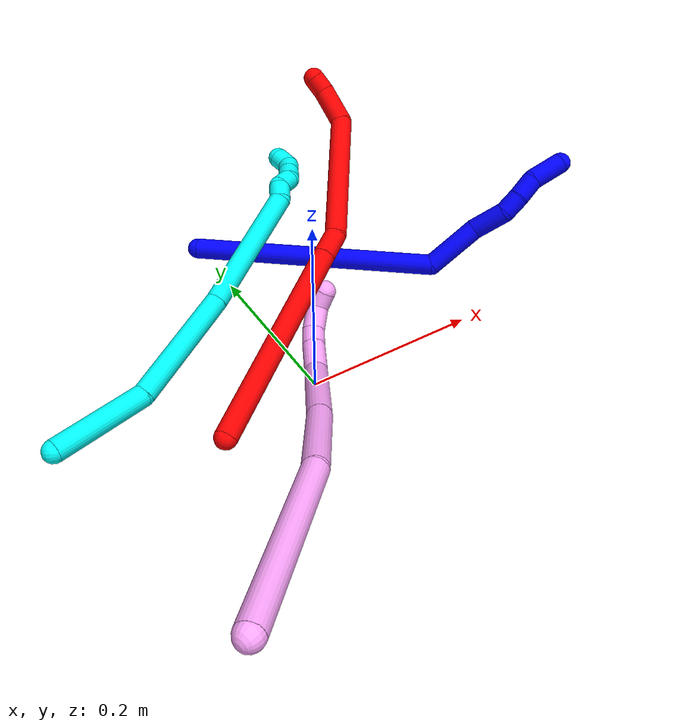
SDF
<sdf version="1.7">
 <world name="default">
  <plugin name="TubeGeneratorPlugin" filename="libtube_generator_plugin.so"/>
  <model name="photoneo_s_sensor">
   <static>1</static>
   <pose>0 0 2 1.57079 1.57079 3.14159</pose>
   <link name="link">
    <inertial><mass>0.1</mass></inertial>
    <sensor name="sensor" type="depth">
     <update_rate>30</update_rate>
     <camera>
      <horizontal_fov>1.22</horizontal_fov>
      <image><width>1920</width><height>1200</height><format>B8G8R8</format></image>
      <clip><near>0.1</near><far>4</far></clip>
      <depth_camera><output>points</output></depth_camera>
     </camera>
     <plugin name="camera_plugin" filename="libgazebo_ros_depth_camera.so">
      <baseline>0.2</baseline>
      <alwaysOn>1</alwaysOn>
      <updateRate>0.0</updateRate>
      <cameraName>camera_ir</cameraName>
      <imageTopicName>/camera/color/image_raw</imageTopicName>
      <cameraInfoTopicName>/camera/color/camera_info</cameraInfoTopicName>
      <depthImageTopicName>/camera/depth/image_raw</depthImageTopicName>
      <depthImageCameraInfoTopicName>/camera/depth/camera_info</depthImageCameraInfoTopicName>
      <pointCloudTopicName>/camera/depth/points</pointCloudTopicName>
      <frameName>fr_optical</frameName>
      <pointCloudCutoff>0.1</pointCloudCutoff>
      <pointCloudCutoffMax>2.0</pointCloudCutoffMax>
      <distortionK1>0</distortionK1>
      <distortionK2>0</distortionK2>
      <distortionK3>0</distortionK3>
      <distortionT1>0</distortionT1>
      <distortionT2>0</distortionT2>
      <CxPrime>0</CxPrime>
      <Cx>0</Cx>
      <Cy>0</Cy>
      <focalLength>0</focalLength>
      <hackBaseline>0</hackBaseline>
     </plugin>
    </sensor>
   </link>
  </model>
  <gravity>0 0 -9.8</gravity>
  <magnetic_field>6e-06 2.3e-05 -4.2e-05</magnetic_field>
  <atmosphere type="adiabatic"/>
  <physics name="default_physics" default="0" type="ode">
   <max_step_size>0.003</max_step_size>
   <real_time_factor>1</real_time_factor>
   <real_time_update_rate>1000</real_time_update_rate>
   <max_contacts>10000</max_contacts>
   <ode>
    <solver>
     <type>quick</type>
     <iters>100</iters>
     <sor>1.3</sor>
     <use_dynamic_moi_rescaling>0</use_dynamic_moi_rescaling>
    </solver>
    <constraints>
     <contact_max_correcting_vel>0</contact_max_correcting_vel>
     <contact_surface_layer>0.001</contact_surface_layer>
     <cfm>0</cfm>
     <erp>0.2</erp>
    </constraints>
   </ode>
  </physics>
  <scene><ambient>0.4 0.4 0.4 1</ambient><background>0.7 0.7 0.7 1</background><shadows>0</shadows></scene>
  <audio><device>default</device></audio>
  <spherical_coordinates>
   <surface_model>EARTH_WGS84</surface_model>
   <latitude_deg>0</latitude_deg>
   <longitude_deg>0</longitude_deg>
   <elevation>0</elevation>
   <heading_deg>0</heading_deg>
  </spherical_coordinates>
  <model name="bin">
   <static>1</static>
   <link name="bottom">
    <collision name="collision-bottom">
     <pose>0 0 -0.01 0 -0 0</pose>
     <geometry><box><size>0.8 0.6 0.02</size></box></geometry>
     <surface>
      <friction><ode><mu>100</mu><mu2>100</mu2></ode></friction>
      <contact><collide_bitmask>65535</collide_bitmask></contact>
     </surface>
    </collision>
   </link>
   <link name="west_wall">
    <collision name="collision-west_wall">
     <pose>-0.41 0 0.1 0 -0 0</pose>
     <geometry><box><size>0.02 0.6 0.2</size></box></geometry>
     <surface>
      <friction><ode><mu>100</mu><mu2>100</mu2></ode></friction>
      <contact><collide_bitmask>65535</collide_bitmask></contact>
     </surface>
    </collision>
   </link>
   <link name="east_wall">
    <collision name="collision-east_wall">
     <pose>0.41 0 0.1 0 -0 0</pose>
     <geometry><box><size>0.02 0.6 0.2</size></box></geometry>
     <surface>
      <friction><ode><mu>100</mu><mu2>100</mu2></ode></friction>
      <contact><collide_bitmask>65535</collide_bitmask></contact>
     </surface>
    </collision>
   </link>
   <link name="south_wall">
    <collision name="collision-south_wall">
     <pose>0 -0.31 0.1 0 -0 0</pose>
     <geometry><box><size>0.8 0.02 0.2</size></box></geometry>
     <surface>
      <friction><ode><mu>100</mu><mu2>100</mu2></ode></friction>
      <contact><collide_bitmask>65535</collide_bitmask></contact>
     </surface>
    </collision>
   </link>
   <link name="north_wall">
    <collision name="collision-north_wall">
     <pose>0 0.31 0.1 0 -0 0</pose>
     <geometry><box><size>0.8 0.02 0.2</size></box></geometry>
     <surface>
      <friction><ode><mu>100</mu><mu2>100</mu2></ode></friction>
      <contact><collide_bitmask>65535</collide_bitmask></contact>
     </surface>
    </collision>
   </link>
  </model>
  <model name="1">
   <static>0</static>
   <link name="1">
    <collision name="collision-cylinder-e_1_1_4">
     <pose>0.102237 -0.104151 0.024269 1.34186 0.762916 0.616474</pose>
     <geometry><cylinder><radius>0.0125</radius><length>0.295898</length></cylinder></geometry>
     <surface>
      <friction><ode><mu>1.16</mu><mu2>1.16</mu2><slip1>0</slip1><slip2>0</slip2></ode></friction>
      <contact><ode><kp>1e+06</kp><kd>1</kd><max_vel>0</max_vel><min_depth>0.001</min_depth></ode></contact>
     </surface>
    </collision>
    <visual name="visual-cylinder-e_1_1_4">
     <pose>0.102237 -0.104151 0.024269 1.34186 0.762916 0.616474</pose>
     <geometry><cylinder><radius>0.0125</radius><length>0.295898</length></cylinder></geometry>
     <material><ambient>0 0 1 1</ambient></material>
    </visual>
    <collision name="collision-cylinder-e_2_4_5">
     <pose>0.2166 -0.235383 0.031329 2.13687 0.361303 0.641926</pose>
     <geometry><cylinder><radius>0.0125</radius><length>0.068604</length></cylinder></geometry>
     <surface>
      <friction><ode><mu>1.16</mu><mu2>1.16</mu2><slip1>0</slip1><slip2>0</slip2></ode></friction>
      <contact><ode><kp>1e+06</kp><kd>1</kd><max_vel>0</max_vel><min_depth>0.001</min_depth></ode></contact>
     </surface>
    </collision>
    <visual name="visual-cylinder-e_2_4_5">
     <pose>0.2166 -0.235383 0.031329 2.13687 0.361303 0.641926</pose>
     <geometry><cylinder><radius>0.0125</radius><length>0.068604</length></cylinder></geometry>
     <material><ambient>0 0 1 1</ambient></material>
    </visual>
    <collision name="collision-cylinder-e_3_5_6">
     <pose>0.242642 -0.275287 0.004198 2.22938 0.709334 1.29317</pose>
     <geometry><cylinder><radius>0.0125</radius><length>0.042731</length></cylinder></geometry>
     <surface>
      <friction><ode><mu>1.16</mu><mu2>1.16</mu2><slip1>0</slip1><slip2>0</slip2></ode></friction>
      <contact><ode><kp>1e+06</kp><kd>1</kd><max_vel>0</max_vel><min_depth>0.001</min_depth></ode></contact>
     </surface>
    </collision>
    <visual name="visual-cylinder-e_3_5_6">
     <pose>0.242642 -0.275287 0.004198 2.22938 0.709334 1.29317</pose>
     <geometry><cylinder><radius>0.0125</radius><length>0.042731</length></cylinder></geometry>
     <material><ambient>0 0 1 1</ambient></material>
    </visual>
    <collision name="collision-cylinder-e_4_6_7">
     <pose>0.260132 -0.297325 -0.013213 2.25314 0.292301 0.599888</pose>
     <geometry><cylinder><radius>0.0125</radius><length>0.024804</length></cylinder></geometry>
     <surface>
      <friction><ode><mu>1.16</mu><mu2>1.16</mu2><slip1>0</slip1><slip2>0</slip2></ode></friction>
      <contact><ode><kp>1e+06</kp><kd>1</kd><max_vel>0</max_vel><min_depth>0.001</min_depth></ode></contact>
     </surface>
    </collision>
    <visual name="visual-cylinder-e_4_6_7">
     <pose>0.260132 -0.297325 -0.013213 2.25314 0.292301 0.599888</pose>
     <geometry><cylinder><radius>0.0125</radius><length>0.024804</length></cylinder></geometry>
     <material><ambient>0 0 1 1</ambient></material>
    </visual>
    <collision name="collision-cylinder-e_5_7_8">
     <pose>0.265461 -0.31762 -0.028572 2.18852 0.128508 0.248006</pose>
     <geometry><cylinder><radius>0.0125</radius><length>0.027403</length></cylinder></geometry>
     <surface>
      <friction><ode><mu>1.16</mu><mu2>1.16</mu2><slip1>0</slip1><slip2>0</slip2></ode></friction>
      <contact><ode><kp>1e+06</kp><kd>1</kd><max_vel>0</max_vel><min_depth>0.001</min_depth></ode></contact>
     </surface>
    </collision>
    <visual name="visual-cylinder-e_5_7_8">
     <pose>0.265461 -0.31762 -0.028572 2.18852 0.128508 0.248006</pose>
     <geometry><cylinder><radius>0.0125</radius><length>0.027403</length></cylinder></geometry>
     <material><ambient>0 0 1 1</ambient></material>
    </visual>
    <collision name="collision-cylinder-e_6_8_2">
     <pose>0.273241 -0.347135 -0.042362 1.88143 0.301589 0.410853</pose>
     <geometry><cylinder><radius>0.0125</radius><length>0.04056</length></cylinder></geometry>
     <surface>
      <friction><ode><mu>1.16</mu><mu2>1.16</mu2><slip1>0</slip1><slip2>0</slip2></ode></friction>
      <contact><ode><kp>1e+06</kp><kd>1</kd><max_vel>0</max_vel><min_depth>0.001</min_depth></ode></contact>
     </surface>
    </collision>
    <visual name="visual-cylinder-e_6_8_2">
     <pose>0.273241 -0.347135 -0.042362 1.88143 0.301589 0.410853</pose>
     <geometry><cylinder><radius>0.0125</radius><length>0.04056</length></cylinder></geometry>
     <material><ambient>0 0 1 1</ambient></material>
    </visual>
    <collision name="collision-sphere-2">
     <pose>0.279265 -0.365573 -0.048281 0 -0 0</pose>
     <geometry><sphere><radius>0.0125</radius></sphere></geometry>
     <surface>
      <friction><ode><mu>1.16</mu><mu2>1.16</mu2><slip1>0</slip1><slip2>0</slip2></ode></friction>
      <contact><ode><kp>1e+06</kp><kd>1</kd><max_vel>0</max_vel><min_depth>0.001</min_depth></ode></contact>
     </surface>
    </collision>
    <visual name="visual-sphere-2">
     <pose>0.279265 -0.365573 -0.048281 0 -0 0</pose>
     <geometry><sphere><radius>0.0125</radius></sphere></geometry>
     <material><ambient>0 0 1 1</ambient></material>
    </visual>
    <collision name="collision-sphere-4">
     <pose>0.204475 -0.208301 0.048538 0 -0 0</pose>
     <geometry><sphere><radius>0.0125</radius></sphere></geometry>
     <surface>
      <friction><ode><mu>1.16</mu><mu2>1.16</mu2><slip1>0</slip1><slip2>0</slip2></ode></friction>
      <contact><ode><kp>1e+06</kp><kd>1</kd><max_vel>0</max_vel><min_depth>0.001</min_depth></ode></contact>
     </surface>
    </collision>
    <visual name="visual-sphere-4">
     <pose>0.204475 -0.208301 0.048538 0 -0 0</pose>
     <geometry><sphere><radius>0.0125</radius></sphere></geometry>
     <material><ambient>0 0 1 1</ambient></material>
    </visual>
    <collision name="collision-sphere-1">
     <geometry><sphere><radius>0.0125</radius></sphere></geometry>
     <surface>
      <friction><ode><mu>1.16</mu><mu2>1.16</mu2><slip1>0</slip1><slip2>0</slip2></ode></friction>
      <contact><ode><kp>1e+06</kp><kd>1</kd><max_vel>0</max_vel><min_depth>0.001</min_depth></ode></contact>
     </surface>
    </collision>
    <visual name="visual-sphere-1">
     <geometry><sphere><radius>0.0125</radius></sphere></geometry>
     <material><ambient>0 0 1 1</ambient></material>
    </visual>
    <collision name="collision-sphere-8">
     <pose>0.267217 -0.328697 -0.036443 0 -0 0</pose>
     <geometry><sphere><radius>0.0125</radius></sphere></geometry>
     <surface>
      <friction><ode><mu>1.16</mu><mu2>1.16</mu2><slip1>0</slip1><slip2>0</slip2></ode></friction>
      <contact><ode><kp>1e+06</kp><kd>1</kd><max_vel>0</max_vel><min_depth>0.001</min_depth></ode></contact>
     </surface>
    </collision>
    <visual name="visual-sphere-8">
     <pose>0.267217 -0.328697 -0.036443 0 -0 0</pose>
     <geometry><sphere><radius>0.0125</radius></sphere></geometry>
     <material><ambient>0 0 1 1</ambient></material>
    </visual>
    <collision name="collision-sphere-5">
     <pose>0.228726 -0.262465 0.01412 0 -0 0</pose>
     <geometry><sphere><radius>0.0125</radius></sphere></geometry>
     <surface>
      <friction><ode><mu>1.16</mu><mu2>1.16</mu2><slip1>0</slip1><slip2>0</slip2></ode></friction>
      <contact><ode><kp>1e+06</kp><kd>1</kd><max_vel>0</max_vel><min_depth>0.001</min_depth></ode></contact>
     </surface>
    </collision>
    <visual name="visual-sphere-5">
     <pose>0.228726 -0.262465 0.01412 0 -0 0</pose>
     <geometry><sphere><radius>0.0125</radius></sphere></geometry>
     <material><ambient>0 0 1 1</ambient></material>
    </visual>
    <collision name="collision-sphere-6">
     <pose>0.256558 -0.288109 -0.005724 0 -0 0</pose>
     <geometry><sphere><radius>0.0125</radius></sphere></geometry>
     <surface>
      <friction><ode><mu>1.16</mu><mu2>1.16</mu2><slip1>0</slip1><slip2>0</slip2></ode></friction>
      <contact><ode><kp>1e+06</kp><kd>1</kd><max_vel>0</max_vel><min_depth>0.001</min_depth></ode></contact>
     </surface>
    </collision>
    <visual name="visual-sphere-6">
     <pose>0.256558 -0.288109 -0.005724 0 -0 0</pose>
     <geometry><sphere><radius>0.0125</radius></sphere></geometry>
     <material><ambient>0 0 1 1</ambient></material>
    </visual>
    <collision name="collision-sphere-7">
     <pose>0.263705 -0.306542 -0.020702 0 -0 0</pose>
     <geometry><sphere><radius>0.0125</radius></sphere></geometry>
     <surface>
      <friction><ode><mu>1.16</mu><mu2>1.16</mu2><slip1>0</slip1><slip2>0</slip2></ode></friction>
      <contact><ode><kp>1e+06</kp><kd>1</kd><max_vel>0</max_vel><min_depth>0.001</min_depth></ode></contact>
     </surface>
    </collision>
    <visual name="visual-sphere-7">
     <pose>0.263705 -0.306542 -0.020702 0 -0 0</pose>
     <geometry><sphere><radius>0.0125</radius></sphere></geometry>
     <material><ambient>0 0 1 1</ambient></material>
    </visual>
    <inertial>
     <pose>0.160579 -0.177776 0.013362 0 -0 0</pose>
     <mass>0.5</mass>
     <inertia>
      <ixx>0.002271</ixx>
      <ixy>0</ixy>
      <ixz>0</ixz>
      <iyy>0.002144</iyy>
      <iyz>0</iyz>
      <izz>4.4e-05</izz>
     </inertia>
    </inertial>
   </link>
   <pose>-0.006692 0.277471 0.012507 3.12392 -0.245218 -1.44964</pose>
  </model>
  <model name="2">
   <static>0</static>
   <link name="2">
    <collision name="collision-cylinder-e_1_1_4">
     <pose>0.013036 0.110824 0.041798 -1.21013 0.109621 -0.075854</pose>
     <geometry><cylinder><radius>0.0125</radius><length>0.238318</length></cylinder></geometry>
     <surface>
      <friction><ode><mu>1.16</mu><mu2>1.16</mu2><slip1>0</slip1><slip2>0</slip2></ode></friction>
      <contact><ode><kp>1e+06</kp><kd>1</kd><max_vel>0</max_vel><min_depth>0.001</min_depth></ode></contact>
     </surface>
    </collision>
    <visual name="visual-cylinder-e_1_1_4">
     <pose>0.013036 0.110824 0.041798 -1.21013 0.109621 -0.075854</pose>
     <geometry><cylinder><radius>0.0125</radius><length>0.238318</length></cylinder></geometry>
     <material><ambient>1 0 0 1</ambient></material>
    </visual>
    <collision name="collision-cylinder-e_2_4_5">
     <pose>0.027561 0.236885 0.08962 -1.19432 0.090572 -0.06161</pose>
     <geometry><cylinder><radius>0.0125</radius><length>0.032905</length></cylinder></geometry>
     <surface>
      <friction><ode><mu>1.16</mu><mu2>1.16</mu2><slip1>0</slip1><slip2>0</slip2></ode></friction>
      <contact><ode><kp>1e+06</kp><kd>1</kd><max_vel>0</max_vel><min_depth>0.001</min_depth></ode></contact>
     </surface>
    </collision>
    <visual name="visual-cylinder-e_2_4_5">
     <pose>0.027561 0.236885 0.08962 -1.19432 0.090572 -0.06161</pose>
     <geometry><cylinder><radius>0.0125</radius><length>0.032905</length></cylinder></geometry>
     <material><ambient>1 0 0 1</ambient></material>
    </visual>
    <collision name="collision-cylinder-e_3_5_6">
     <pose>0.063718 0.314786 0.13372 -1.02479 0.441671 -0.251231</pose>
     <geometry><cylinder><radius>0.0125</radius><length>0.162215</length></cylinder></geometry>
     <surface>
      <friction><ode><mu>1.16</mu><mu2>1.16</mu2><slip1>0</slip1><slip2>0</slip2></ode></friction>
      <contact><ode><kp>1e+06</kp><kd>1</kd><max_vel>0</max_vel><min_depth>0.001</min_depth></ode></contact>
     </surface>
    </collision>
    <visual name="visual-cylinder-e_3_5_6">
     <pose>0.063718 0.314786 0.13372 -1.02479 0.441671 -0.251231</pose>
     <geometry><cylinder><radius>0.0125</radius><length>0.162215</length></cylinder></geometry>
     <material><ambient>1 0 0 1</ambient></material>
    </visual>
    <collision name="collision-cylinder-e_4_6_7">
     <pose>0.117113 0.38577 0.181967 -0.685717 0.958874 -0.366985</pose>
     <geometry><cylinder><radius>0.0125</radius><length>0.045753</length></cylinder></geometry>
     <surface>
      <friction><ode><mu>1.16</mu><mu2>1.16</mu2><slip1>0</slip1><slip2>0</slip2></ode></friction>
      <contact><ode><kp>1e+06</kp><kd>1</kd><max_vel>0</max_vel><min_depth>0.001</min_depth></ode></contact>
     </surface>
    </collision>
    <visual name="visual-cylinder-e_4_6_7">
     <pose>0.117113 0.38577 0.181967 -0.685717 0.958874 -0.366985</pose>
     <geometry><cylinder><radius>0.0125</radius><length>0.045753</length></cylinder></geometry>
     <material><ambient>1 0 0 1</ambient></material>
    </visual>
    <collision name="collision-cylinder-e_5_7_2">
     <pose>0.145992 0.395544 0.19388 -0.694987 1.35099 -0.564883</pose>
     <geometry><cylinder><radius>0.0125</radius><length>0.020809</length></cylinder></geometry>
     <surface>
      <friction><ode><mu>1.16</mu><mu2>1.16</mu2><slip1>0</slip1><slip2>0</slip2></ode></friction>
      <contact><ode><kp>1e+06</kp><kd>1</kd><max_vel>0</max_vel><min_depth>0.001</min_depth></ode></contact>
     </surface>
    </collision>
    <visual name="visual-cylinder-e_5_7_2">
     <pose>0.145992 0.395544 0.19388 -0.694987 1.35099 -0.564883</pose>
     <geometry><cylinder><radius>0.0125</radius><length>0.020809</length></cylinder></geometry>
     <material><ambient>1 0 0 1</ambient></material>
    </visual>
    <collision name="collision-sphere-2">
     <pose>0.156146 0.396997 0.195622 0 -0 0</pose>
     <geometry><sphere><radius>0.0125</radius></sphere></geometry>
     <surface>
      <friction><ode><mu>1.16</mu><mu2>1.16</mu2><slip1>0</slip1><slip2>0</slip2></ode></friction>
      <contact><ode><kp>1e+06</kp><kd>1</kd><max_vel>0</max_vel><min_depth>0.001</min_depth></ode></contact>
     </surface>
    </collision>
    <visual name="visual-sphere-2">
     <pose>0.156146 0.396997 0.195622 0 -0 0</pose>
     <geometry><sphere><radius>0.0125</radius></sphere></geometry>
     <material><ambient>1 0 0 1</ambient></material>
    </visual>
    <collision name="collision-sphere-7">
     <pose>0.135838 0.394092 0.192137 0 -0 0</pose>
     <geometry><sphere><radius>0.0125</radius></sphere></geometry>
     <surface>
      <friction><ode><mu>1.16</mu><mu2>1.16</mu2><slip1>0</slip1><slip2>0</slip2></ode></friction>
      <contact><ode><kp>1e+06</kp><kd>1</kd><max_vel>0</max_vel><min_depth>0.001</min_depth></ode></contact>
     </surface>
    </collision>
    <visual name="visual-sphere-7">
     <pose>0.135838 0.394092 0.192137 0 -0 0</pose>
     <geometry><sphere><radius>0.0125</radius></sphere></geometry>
     <material><ambient>1 0 0 1</ambient></material>
    </visual>
    <collision name="collision-sphere-6">
     <pose>0.098388 0.377449 0.171796 0 -0 0</pose>
     <geometry><sphere><radius>0.0125</radius></sphere></geometry>
     <surface>
      <friction><ode><mu>1.16</mu><mu2>1.16</mu2><slip1>0</slip1><slip2>0</slip2></ode></friction>
      <contact><ode><kp>1e+06</kp><kd>1</kd><max_vel>0</max_vel><min_depth>0.001</min_depth></ode></contact>
     </surface>
    </collision>
    <visual name="visual-sphere-6">
     <pose>0.098388 0.377449 0.171796 0 -0 0</pose>
     <geometry><sphere><radius>0.0125</radius></sphere></geometry>
     <material><ambient>1 0 0 1</ambient></material>
    </visual>
    <collision name="collision-sphere-5">
     <pose>0.029049 0.252123 0.095644 0 -0 0</pose>
     <geometry><sphere><radius>0.0125</radius></sphere></geometry>
     <surface>
      <friction><ode><mu>1.16</mu><mu2>1.16</mu2><slip1>0</slip1><slip2>0</slip2></ode></friction>
      <contact><ode><kp>1e+06</kp><kd>1</kd><max_vel>0</max_vel><min_depth>0.001</min_depth></ode></contact>
     </surface>
    </collision>
    <visual name="visual-sphere-5">
     <pose>0.029049 0.252123 0.095644 0 -0 0</pose>
     <geometry><sphere><radius>0.0125</radius></sphere></geometry>
     <material><ambient>1 0 0 1</ambient></material>
    </visual>
    <collision name="collision-sphere-1">
     <geometry><sphere><radius>0.0125</radius></sphere></geometry>
     <surface>
      <friction><ode><mu>1.16</mu><mu2>1.16</mu2><slip1>0</slip1><slip2>0</slip2></ode></friction>
      <contact><ode><kp>1e+06</kp><kd>1</kd><max_vel>0</max_vel><min_depth>0.001</min_depth></ode></contact>
     </surface>
    </collision>
    <visual name="visual-sphere-1">
     <geometry><sphere><radius>0.0125</radius></sphere></geometry>
     <material><ambient>1 0 0 1</ambient></material>
    </visual>
    <collision name="collision-sphere-4">
     <pose>0.026072 0.221647 0.083596 0 -0 0</pose>
     <geometry><sphere><radius>0.0125</radius></sphere></geometry>
     <surface>
      <friction><ode><mu>1.16</mu><mu2>1.16</mu2><slip1>0</slip1><slip2>0</slip2></ode></friction>
      <contact><ode><kp>1e+06</kp><kd>1</kd><max_vel>0</max_vel><min_depth>0.001</min_depth></ode></contact>
     </surface>
    </collision>
    <visual name="visual-sphere-4">
     <pose>0.026072 0.221647 0.083596 0 -0 0</pose>
     <geometry><sphere><radius>0.0125</radius></sphere></geometry>
     <material><ambient>1 0 0 1</ambient></material>
    </visual>
    <inertial>
     <pose>0.045492 0.2223 0.093923 0 -0 0</pose>
     <mass>0.5</mass>
     <inertia>
      <ixx>0.001297</ixx>
      <ixy>0</ixy>
      <ixz>0</ixz>
      <iyy>0.000497</iyy>
      <iyz>0</iyz>
      <izz>-0.001619</izz>
     </inertia>
    </inertial>
   </link>
   <pose>-0.118911 -0.027608 0.011497 2.45084 -0.843451 2.32901</pose>
  </model>
  <model name="3">
   <static>0</static>
   <link name="3">
    <collision name="collision-cylinder-e_1_1_4">
     <pose>0.03265 0.034547 -0.023155 -2.16126 0.665566 -1.14958</pose>
     <geometry><cylinder><radius>0.0125</radius><length>0.105749</length></cylinder></geometry>
     <surface>
      <friction><ode><mu>1.16</mu><mu2>1.16</mu2><slip1>0</slip1><slip2>0</slip2></ode></friction>
      <contact><ode><kp>1e+06</kp><kd>1</kd><max_vel>0</max_vel><min_depth>0.001</min_depth></ode></contact>
     </surface>
    </collision>
    <visual name="visual-cylinder-e_1_1_4">
     <pose>0.03265 0.034547 -0.023155 -2.16126 0.665566 -1.14958</pose>
     <geometry><cylinder><radius>0.0125</radius><length>0.105749</length></cylinder></geometry>
     <material><ambient>0.003922 1 0.996078 1</ambient></material>
    </visual>
    <collision name="collision-cylinder-e_2_4_5">
     <pose>0.123706 0.105608 -0.061432 -1.96345 0.975904 -1.34252</pose>
     <geometry><cylinder><radius>0.0125</radius><length>0.141041</length></cylinder></geometry>
     <surface>
      <friction><ode><mu>1.16</mu><mu2>1.16</mu2><slip1>0</slip1><slip2>0</slip2></ode></friction>
      <contact><ode><kp>1e+06</kp><kd>1</kd><max_vel>0</max_vel><min_depth>0.001</min_depth></ode></contact>
     </surface>
    </collision>
    <visual name="visual-cylinder-e_2_4_5">
     <pose>0.123706 0.105608 -0.061432 -1.96345 0.975904 -1.34252</pose>
     <geometry><cylinder><radius>0.0125</radius><length>0.141041</length></cylinder></geometry>
     <material><ambient>0.003922 1 0.996078 1</ambient></material>
    </visual>
    <collision name="collision-cylinder-e_3_5_6">
     <pose>0.250651 0.167459 -0.096447 -2.23638 1.13144 -1.83446</pose>
     <geometry><cylinder><radius>0.0125</radius><length>0.151463</length></cylinder></geometry>
     <surface>
      <friction><ode><mu>1.16</mu><mu2>1.16</mu2><slip1>0</slip1><slip2>0</slip2></ode></friction>
      <contact><ode><kp>1e+06</kp><kd>1</kd><max_vel>0</max_vel><min_depth>0.001</min_depth></ode></contact>
     </surface>
    </collision>
    <visual name="visual-cylinder-e_3_5_6">
     <pose>0.250651 0.167459 -0.096447 -2.23638 1.13144 -1.83446</pose>
     <geometry><cylinder><radius>0.0125</radius><length>0.151463</length></cylinder></geometry>
     <material><ambient>0.003922 1 0.996078 1</ambient></material>
    </visual>
    <collision name="collision-cylinder-e_4_6_7">
     <pose>0.328542 0.195243 -0.113773 -0.761848 1.20842 -0.539465</pose>
     <geometry><cylinder><radius>0.0125</radius><length>0.020004</length></cylinder></geometry>
     <surface>
      <friction><ode><mu>1.16</mu><mu2>1.16</mu2><slip1>0</slip1><slip2>0</slip2></ode></friction>
      <contact><ode><kp>1e+06</kp><kd>1</kd><max_vel>0</max_vel><min_depth>0.001</min_depth></ode></contact>
     </surface>
    </collision>
    <visual name="visual-cylinder-e_4_6_7">
     <pose>0.328542 0.195243 -0.113773 -0.761848 1.20842 -0.539465</pose>
     <geometry><cylinder><radius>0.0125</radius><length>0.020004</length></cylinder></geometry>
     <material><ambient>0.003922 1 0.996078 1</ambient></material>
    </visual>
    <collision name="collision-cylinder-e_5_7_8">
     <pose>0.344866 0.204969 -0.113464 -1.87145 0.740995 -0.970201</pose>
     <geometry><cylinder><radius>0.0125</radius><length>0.020656</length></cylinder></geometry>
     <surface>
      <friction><ode><mu>1.16</mu><mu2>1.16</mu2><slip1>0</slip1><slip2>0</slip2></ode></friction>
      <contact><ode><kp>1e+06</kp><kd>1</kd><max_vel>0</max_vel><min_depth>0.001</min_depth></ode></contact>
     </surface>
    </collision>
    <visual name="visual-cylinder-e_5_7_8">
     <pose>0.344866 0.204969 -0.113464 -1.87145 0.740995 -0.970201</pose>
     <geometry><cylinder><radius>0.0125</radius><length>0.020656</length></cylinder></geometry>
     <material><ambient>0.003922 1 0.996078 1</ambient></material>
    </visual>
    <collision name="collision-cylinder-e_6_8_9">
     <pose>0.359 0.218719 -0.111936 -1.0416 0.762584 -0.452083</pose>
     <geometry><cylinder><radius>0.0125</radius><length>0.020739</length></cylinder></geometry>
     <surface>
      <friction><ode><mu>1.16</mu><mu2>1.16</mu2><slip1>0</slip1><slip2>0</slip2></ode></friction>
      <contact><ode><kp>1e+06</kp><kd>1</kd><max_vel>0</max_vel><min_depth>0.001</min_depth></ode></contact>
     </surface>
    </collision>
    <visual name="visual-cylinder-e_6_8_9">
     <pose>0.359 0.218719 -0.111936 -1.0416 0.762584 -0.452083</pose>
     <geometry><cylinder><radius>0.0125</radius><length>0.020739</length></cylinder></geometry>
     <material><ambient>0.003922 1 0.996078 1</ambient></material>
    </visual>
    <collision name="collision-cylinder-e_7_9_10">
     <pose>0.373109 0.231589 -0.104434 -1.04459 0.753796 -0.448031</pose>
     <geometry><cylinder><radius>0.0125</radius><length>0.020297</length></cylinder></geometry>
     <surface>
      <friction><ode><mu>1.16</mu><mu2>1.16</mu2><slip1>0</slip1><slip2>0</slip2></ode></friction>
      <contact><ode><kp>1e+06</kp><kd>1</kd><max_vel>0</max_vel><min_depth>0.001</min_depth></ode></contact>
     </surface>
    </collision>
    <visual name="visual-cylinder-e_7_9_10">
     <pose>0.373109 0.231589 -0.104434 -1.04459 0.753796 -0.448031</pose>
     <geometry><cylinder><radius>0.0125</radius><length>0.020297</length></cylinder></geometry>
     <material><ambient>0.003922 1 0.996078 1</ambient></material>
    </visual>
    <collision name="collision-cylinder-e_8_10_2">
     <pose>0.386062 0.238769 -0.092729 -0.097457 0.642449 -0.032452</pose>
     <geometry><cylinder><radius>0.0125</radius><length>0.020052</length></cylinder></geometry>
     <surface>
      <friction><ode><mu>1.16</mu><mu2>1.16</mu2><slip1>0</slip1><slip2>0</slip2></ode></friction>
      <contact><ode><kp>1e+06</kp><kd>1</kd><max_vel>0</max_vel><min_depth>0.001</min_depth></ode></contact>
     </surface>
    </collision>
    <visual name="visual-cylinder-e_8_10_2">
     <pose>0.386062 0.238769 -0.092729 -0.097457 0.642449 -0.032452</pose>
     <geometry><cylinder><radius>0.0125</radius><length>0.020052</length></cylinder></geometry>
     <material><ambient>0.003922 1 0.996078 1</ambient></material>
    </visual>
    <collision name="collision-sphere-2">
     <pose>0.392069 0.23955 -0.08474 0 -0 0</pose>
     <geometry><sphere><radius>0.0125</radius></sphere></geometry>
     <surface>
      <friction><ode><mu>1.16</mu><mu2>1.16</mu2><slip1>0</slip1><slip2>0</slip2></ode></friction>
      <contact><ode><kp>1e+06</kp><kd>1</kd><max_vel>0</max_vel><min_depth>0.001</min_depth></ode></contact>
     </surface>
    </collision>
    <visual name="visual-sphere-2">
     <pose>0.392069 0.23955 -0.08474 0 -0 0</pose>
     <geometry><sphere><radius>0.0125</radius></sphere></geometry>
     <material><ambient>0.003922 1 0.996078 1</ambient></material>
    </visual>
    <collision name="collision-sphere-10">
     <pose>0.380055 0.237988 -0.100718 0 -0 0</pose>
     <geometry><sphere><radius>0.0125</radius></sphere></geometry>
     <surface>
      <friction><ode><mu>1.16</mu><mu2>1.16</mu2><slip1>0</slip1><slip2>0</slip2></ode></friction>
      <contact><ode><kp>1e+06</kp><kd>1</kd><max_vel>0</max_vel><min_depth>0.001</min_depth></ode></contact>
     </surface>
    </collision>
    <visual name="visual-sphere-10">
     <pose>0.380055 0.237988 -0.100718 0 -0 0</pose>
     <geometry><sphere><radius>0.0125</radius></sphere></geometry>
     <material><ambient>0.003922 1 0.996078 1</ambient></material>
    </visual>
    <collision name="collision-sphere-9">
     <pose>0.366164 0.225191 -0.10815 0 -0 0</pose>
     <geometry><sphere><radius>0.0125</radius></sphere></geometry>
     <surface>
      <friction><ode><mu>1.16</mu><mu2>1.16</mu2><slip1>0</slip1><slip2>0</slip2></ode></friction>
      <contact><ode><kp>1e+06</kp><kd>1</kd><max_vel>0</max_vel><min_depth>0.001</min_depth></ode></contact>
     </surface>
    </collision>
    <visual name="visual-sphere-9">
     <pose>0.366164 0.225191 -0.10815 0 -0 0</pose>
     <geometry><sphere><radius>0.0125</radius></sphere></geometry>
     <material><ambient>0.003922 1 0.996078 1</ambient></material>
    </visual>
    <collision name="collision-sphere-4">
     <pose>0.0653 0.069095 -0.046309 0 -0 0</pose>
     <geometry><sphere><radius>0.0125</radius></sphere></geometry>
     <surface>
      <friction><ode><mu>1.16</mu><mu2>1.16</mu2><slip1>0</slip1><slip2>0</slip2></ode></friction>
      <contact><ode><kp>1e+06</kp><kd>1</kd><max_vel>0</max_vel><min_depth>0.001</min_depth></ode></contact>
     </surface>
    </collision>
    <visual name="visual-sphere-4">
     <pose>0.0653 0.069095 -0.046309 0 -0 0</pose>
     <geometry><sphere><radius>0.0125</radius></sphere></geometry>
     <material><ambient>0.003922 1 0.996078 1</ambient></material>
    </visual>
    <collision name="collision-sphere-1">
     <geometry><sphere><radius>0.0125</radius></sphere></geometry>
     <surface>
      <friction><ode><mu>1.16</mu><mu2>1.16</mu2><slip1>0</slip1><slip2>0</slip2></ode></friction>
      <contact><ode><kp>1e+06</kp><kd>1</kd><max_vel>0</max_vel><min_depth>0.001</min_depth></ode></contact>
     </surface>
    </collision>
    <visual name="visual-sphere-1">
     <geometry><sphere><radius>0.0125</radius></sphere></geometry>
     <material><ambient>0.003922 1 0.996078 1</ambient></material>
    </visual>
    <collision name="collision-sphere-8">
     <pose>0.351837 0.212247 -0.115721 0 -0 0</pose>
     <geometry><sphere><radius>0.0125</radius></sphere></geometry>
     <surface>
      <friction><ode><mu>1.16</mu><mu2>1.16</mu2><slip1>0</slip1><slip2>0</slip2></ode></friction>
      <contact><ode><kp>1e+06</kp><kd>1</kd><max_vel>0</max_vel><min_depth>0.001</min_depth></ode></contact>
     </surface>
    </collision>
    <visual name="visual-sphere-8">
     <pose>0.351837 0.212247 -0.115721 0 -0 0</pose>
     <geometry><sphere><radius>0.0125</radius></sphere></geometry>
     <material><ambient>0.003922 1 0.996078 1</ambient></material>
    </visual>
    <collision name="collision-sphere-5">
     <pose>0.182112 0.142121 -0.076555 0 -0 0</pose>
     <geometry><sphere><radius>0.0125</radius></sphere></geometry>
     <surface>
      <friction><ode><mu>1.16</mu><mu2>1.16</mu2><slip1>0</slip1><slip2>0</slip2></ode></friction>
      <contact><ode><kp>1e+06</kp><kd>1</kd><max_vel>0</max_vel><min_depth>0.001</min_depth></ode></contact>
     </surface>
    </collision>
    <visual name="visual-sphere-5">
     <pose>0.182112 0.142121 -0.076555 0 -0 0</pose>
     <geometry><sphere><radius>0.0125</radius></sphere></geometry>
     <material><ambient>0.003922 1 0.996078 1</ambient></material>
    </visual>
    <collision name="collision-sphere-6">
     <pose>0.319189 0.192796 -0.116339 0 -0 0</pose>
     <geometry><sphere><radius>0.0125</radius></sphere></geometry>
     <surface>
      <friction><ode><mu>1.16</mu><mu2>1.16</mu2><slip1>0</slip1><slip2>0</slip2></ode></friction>
      <contact><ode><kp>1e+06</kp><kd>1</kd><max_vel>0</max_vel><min_depth>0.001</min_depth></ode></contact>
     </surface>
    </collision>
    <visual name="visual-sphere-6">
     <pose>0.319189 0.192796 -0.116339 0 -0 0</pose>
     <geometry><sphere><radius>0.0125</radius></sphere></geometry>
     <material><ambient>0.003922 1 0.996078 1</ambient></material>
    </visual>
    <collision name="collision-sphere-7">
     <pose>0.337894 0.197691 -0.111208 0 -0 0</pose>
     <geometry><sphere><radius>0.0125</radius></sphere></geometry>
     <surface>
      <friction><ode><mu>1.16</mu><mu2>1.16</mu2><slip1>0</slip1><slip2>0</slip2></ode></friction>
      <contact><ode><kp>1e+06</kp><kd>1</kd><max_vel>0</max_vel><min_depth>0.001</min_depth></ode></contact>
     </surface>
    </collision>
    <visual name="visual-sphere-7">
     <pose>0.337894 0.197691 -0.111208 0 -0 0</pose>
     <geometry><sphere><radius>0.0125</radius></sphere></geometry>
     <material><ambient>0.003922 1 0.996078 1</ambient></material>
    </visual>
    <inertial>
     <pose>0.190639 0.132152 -0.073282 0 -0 0</pose>
     <mass>0.5</mass>
     <inertia>
      <ixx>-0.000262</ixx>
      <ixy>0</ixy>
      <ixz>0</ixz>
      <iyy>0.000129</iyy>
      <iyz>0</iyz>
      <izz>-0.000834</izz>
     </inertia>
    </inertial>
   </link>
   <pose>-0.268056 0.044084 0.012529 -1.84302 -0.686093 0.885449</pose>
  </model>
  <model name="4">
   <static>0</static>
   <link name="4">
    <collision name="collision-cylinder-e_1_1_4">
     <pose>-0.004437 0.033771 -0.079842 -2.74145 -0.051134 0.250885</pose>
     <geometry><cylinder><radius>0.0125</radius><length>0.173608</length></cylinder></geometry>
     <surface>
      <friction><ode><mu>1.16</mu><mu2>1.16</mu2><slip1>0</slip1><slip2>0</slip2></ode></friction>
      <contact><ode><kp>1e+06</kp><kd>1</kd><max_vel>0</max_vel><min_depth>0.001</min_depth></ode></contact>
     </surface>
    </collision>
    <visual name="visual-cylinder-e_1_1_4">
     <pose>-0.004437 0.033771 -0.079842 -2.74145 -0.051134 0.250885</pose>
     <geometry><cylinder><radius>0.0125</radius><length>0.173608</length></cylinder></geometry>
     <material><ambient>1 0.65098 0.996078 1</ambient></material>
    </visual>
    <collision name="collision-cylinder-e_2_4_5">
     <pose>-0.019442 0.096764 -0.19954 -2.50892 -0.210671 0.624837</pose>
     <geometry><cylinder><radius>0.0125</radius><length>0.101077</length></cylinder></geometry>
     <surface>
      <friction><ode><mu>1.16</mu><mu2>1.16</mu2><slip1>0</slip1><slip2>0</slip2></ode></friction>
      <contact><ode><kp>1e+06</kp><kd>1</kd><max_vel>0</max_vel><min_depth>0.001</min_depth></ode></contact>
     </surface>
    </collision>
    <visual name="visual-cylinder-e_2_4_5">
     <pose>-0.019442 0.096764 -0.19954 -2.50892 -0.210671 0.624837</pose>
     <geometry><cylinder><radius>0.0125</radius><length>0.101077</length></cylinder></geometry>
     <material><ambient>1 0.65098 0.996078 1</ambient></material>
    </visual>
    <collision name="collision-cylinder-e_3_5_6">
     <pose>-0.044035 0.163371 -0.283644 -2.44009 -0.237551 0.630572</pose>
     <geometry><cylinder><radius>0.0125</radius><length>0.119199</length></cylinder></geometry>
     <surface>
      <friction><ode><mu>1.16</mu><mu2>1.16</mu2><slip1>0</slip1><slip2>0</slip2></ode></friction>
      <contact><ode><kp>1e+06</kp><kd>1</kd><max_vel>0</max_vel><min_depth>0.001</min_depth></ode></contact>
     </surface>
    </collision>
    <visual name="visual-cylinder-e_3_5_6">
     <pose>-0.044035 0.163371 -0.283644 -2.44009 -0.237551 0.630572</pose>
     <geometry><cylinder><radius>0.0125</radius><length>0.119199</length></cylinder></geometry>
     <material><ambient>1 0.65098 0.996078 1</ambient></material>
    </visual>
    <collision name="collision-cylinder-e_4_6_7">
     <pose>-0.052522 0.211632 -0.341233 -2.45753 0.311289 -0.830252</pose>
     <geometry><cylinder><radius>0.0125</radius><length>0.036165</length></cylinder></geometry>
     <surface>
      <friction><ode><mu>1.16</mu><mu2>1.16</mu2><slip1>0</slip1><slip2>0</slip2></ode></friction>
      <contact><ode><kp>1e+06</kp><kd>1</kd><max_vel>0</max_vel><min_depth>0.001</min_depth></ode></contact>
     </surface>
    </collision>
    <visual name="visual-cylinder-e_4_6_7">
     <pose>-0.052522 0.211632 -0.341233 -2.45753 0.311289 -0.830252</pose>
     <geometry><cylinder><radius>0.0125</radius><length>0.036165</length></cylinder></geometry>
     <material><ambient>1 0.65098 0.996078 1</ambient></material>
    </visual>
    <collision name="collision-cylinder-e_5_7_8">
     <pose>-0.043401 0.228094 -0.362286 -2.51494 0.359842 -1.02309</pose>
     <geometry><cylinder><radius>0.0125</radius><length>0.020347</length></cylinder></geometry>
     <surface>
      <friction><ode><mu>1.16</mu><mu2>1.16</mu2><slip1>0</slip1><slip2>0</slip2></ode></friction>
      <contact><ode><kp>1e+06</kp><kd>1</kd><max_vel>0</max_vel><min_depth>0.001</min_depth></ode></contact>
     </surface>
    </collision>
    <visual name="visual-cylinder-e_5_7_8">
     <pose>-0.043401 0.228094 -0.362286 -2.51494 0.359842 -1.02309</pose>
     <geometry><cylinder><radius>0.0125</radius><length>0.020347</length></cylinder></geometry>
     <material><ambient>1 0.65098 0.996078 1</ambient></material>
    </visual>
    <collision name="collision-cylinder-e_6_8_9">
     <pose>-0.031697 0.238233 -0.381449 -2.763 0.582735 -2.0046</pose>
     <geometry><cylinder><radius>0.0125</radius><length>0.029518</length></cylinder></geometry>
     <surface>
      <friction><ode><mu>1.16</mu><mu2>1.16</mu2><slip1>0</slip1><slip2>0</slip2></ode></friction>
      <contact><ode><kp>1e+06</kp><kd>1</kd><max_vel>0</max_vel><min_depth>0.001</min_depth></ode></contact>
     </surface>
    </collision>
    <visual name="visual-cylinder-e_6_8_9">
     <pose>-0.031697 0.238233 -0.381449 -2.763 0.582735 -2.0046</pose>
     <geometry><cylinder><radius>0.0125</radius><length>0.029518</length></cylinder></geometry>
     <material><ambient>1 0.65098 0.996078 1</ambient></material>
    </visual>
    <collision name="collision-cylinder-e_7_9_2">
     <pose>-0.01519 0.240163 -0.397764 2.64674 0.987979 2.26441</pose>
     <geometry><cylinder><radius>0.0125</radius><length>0.020086</length></cylinder></geometry>
     <surface>
      <friction><ode><mu>1.16</mu><mu2>1.16</mu2><slip1>0</slip1><slip2>0</slip2></ode></friction>
      <contact><ode><kp>1e+06</kp><kd>1</kd><max_vel>0</max_vel><min_depth>0.001</min_depth></ode></contact>
     </surface>
    </collision>
    <visual name="visual-cylinder-e_7_9_2">
     <pose>-0.01519 0.240163 -0.397764 2.64674 0.987979 2.26441</pose>
     <geometry><cylinder><radius>0.0125</radius><length>0.020086</length></cylinder></geometry>
     <material><ambient>1 0.65098 0.996078 1</ambient></material>
    </visual>
    <collision name="collision-sphere-2">
     <pose>-0.006805 0.237538 -0.402628 0 -0 0</pose>
     <geometry><sphere><radius>0.0125</radius></sphere></geometry>
     <surface>
      <friction><ode><mu>1.16</mu><mu2>1.16</mu2><slip1>0</slip1><slip2>0</slip2></ode></friction>
      <contact><ode><kp>1e+06</kp><kd>1</kd><max_vel>0</max_vel><min_depth>0.001</min_depth></ode></contact>
     </surface>
    </collision>
    <visual name="visual-sphere-2">
     <pose>-0.006805 0.237538 -0.402628 0 -0 0</pose>
     <geometry><sphere><radius>0.0125</radius></sphere></geometry>
     <material><ambient>1 0.65098 0.996078 1</ambient></material>
    </visual>
    <collision name="collision-sphere-9">
     <pose>-0.023575 0.242788 -0.3929 0 -0 0</pose>
     <geometry><sphere><radius>0.0125</radius></sphere></geometry>
     <surface>
      <friction><ode><mu>1.16</mu><mu2>1.16</mu2><slip1>0</slip1><slip2>0</slip2></ode></friction>
      <contact><ode><kp>1e+06</kp><kd>1</kd><max_vel>0</max_vel><min_depth>0.001</min_depth></ode></contact>
     </surface>
    </collision>
    <visual name="visual-sphere-9">
     <pose>-0.023575 0.242788 -0.3929 0 -0 0</pose>
     <geometry><sphere><radius>0.0125</radius></sphere></geometry>
     <material><ambient>1 0.65098 0.996078 1</ambient></material>
    </visual>
    <collision name="collision-sphere-4">
     <pose>-0.008873 0.067541 -0.159685 0 -0 0</pose>
     <geometry><sphere><radius>0.0125</radius></sphere></geometry>
     <surface>
      <friction><ode><mu>1.16</mu><mu2>1.16</mu2><slip1>0</slip1><slip2>0</slip2></ode></friction>
      <contact><ode><kp>1e+06</kp><kd>1</kd><max_vel>0</max_vel><min_depth>0.001</min_depth></ode></contact>
     </surface>
    </collision>
    <visual name="visual-sphere-4">
     <pose>-0.008873 0.067541 -0.159685 0 -0 0</pose>
     <geometry><sphere><radius>0.0125</radius></sphere></geometry>
     <material><ambient>1 0.65098 0.996078 1</ambient></material>
    </visual>
    <collision name="collision-sphere-1">
     <geometry><sphere><radius>0.0125</radius></sphere></geometry>
     <surface>
      <friction><ode><mu>1.16</mu><mu2>1.16</mu2><slip1>0</slip1><slip2>0</slip2></ode></friction>
      <contact><ode><kp>1e+06</kp><kd>1</kd><max_vel>0</max_vel><min_depth>0.001</min_depth></ode></contact>
     </surface>
    </collision>
    <visual name="visual-sphere-1">
     <geometry><sphere><radius>0.0125</radius></sphere></geometry>
     <material><ambient>1 0.65098 0.996078 1</ambient></material>
    </visual>
    <collision name="collision-sphere-8">
     <pose>-0.039819 0.233678 -0.369999 0 -0 0</pose>
     <geometry><sphere><radius>0.0125</radius></sphere></geometry>
     <surface>
      <friction><ode><mu>1.16</mu><mu2>1.16</mu2><slip1>0</slip1><slip2>0</slip2></ode></friction>
      <contact><ode><kp>1e+06</kp><kd>1</kd><max_vel>0</max_vel><min_depth>0.001</min_depth></ode></contact>
     </surface>
    </collision>
    <visual name="visual-sphere-8">
     <pose>-0.039819 0.233678 -0.369999 0 -0 0</pose>
     <geometry><sphere><radius>0.0125</radius></sphere></geometry>
     <material><ambient>1 0.65098 0.996078 1</ambient></material>
    </visual>
    <collision name="collision-sphere-5">
     <pose>-0.03001 0.125987 -0.239396 0 -0 0</pose>
     <geometry><sphere><radius>0.0125</radius></sphere></geometry>
     <surface>
      <friction><ode><mu>1.16</mu><mu2>1.16</mu2><slip1>0</slip1><slip2>0</slip2></ode></friction>
      <contact><ode><kp>1e+06</kp><kd>1</kd><max_vel>0</max_vel><min_depth>0.001</min_depth></ode></contact>
     </surface>
    </collision>
    <visual name="visual-sphere-5">
     <pose>-0.03001 0.125987 -0.239396 0 -0 0</pose>
     <geometry><sphere><radius>0.0125</radius></sphere></geometry>
     <material><ambient>1 0.65098 0.996078 1</ambient></material>
    </visual>
    <collision name="collision-sphere-6">
     <pose>-0.05806 0.200754 -0.327892 0 -0 0</pose>
     <geometry><sphere><radius>0.0125</radius></sphere></geometry>
     <surface>
      <friction><ode><mu>1.16</mu><mu2>1.16</mu2><slip1>0</slip1><slip2>0</slip2></ode></friction>
      <contact><ode><kp>1e+06</kp><kd>1</kd><max_vel>0</max_vel><min_depth>0.001</min_depth></ode></contact>
     </surface>
    </collision>
    <visual name="visual-sphere-6">
     <pose>-0.05806 0.200754 -0.327892 0 -0 0</pose>
     <geometry><sphere><radius>0.0125</radius></sphere></geometry>
     <material><ambient>1 0.65098 0.996078 1</ambient></material>
    </visual>
    <collision name="collision-sphere-7">
     <pose>-0.046984 0.22251 -0.354573 0 -0 0</pose>
     <geometry><sphere><radius>0.0125</radius></sphere></geometry>
     <surface>
      <friction><ode><mu>1.16</mu><mu2>1.16</mu2><slip1>0</slip1><slip2>0</slip2></ode></friction>
      <contact><ode><kp>1e+06</kp><kd>1</kd><max_vel>0</max_vel><min_depth>0.001</min_depth></ode></contact>
     </surface>
    </collision>
    <visual name="visual-sphere-7">
     <pose>-0.046984 0.22251 -0.354573 0 -0 0</pose>
     <geometry><sphere><radius>0.0125</radius></sphere></geometry>
     <material><ambient>1 0.65098 0.996078 1</ambient></material>
    </visual>
    <inertial>
     <pose>-0.024015 0.118536 -0.213603 0 -0 0</pose>
     <mass>0.5</mass>
     <inertia>
      <ixx>0.000854</ixx>
      <ixy>0</ixy>
      <ixz>0</ixz>
      <iyy>-0.000265</iyy>
      <iyz>0</iyz>
      <izz>-0.000281</izz>
     </inertia>
    </inertial>
   </link>
   <pose>-0.221544 -0.288503 0.127665 -1.19316 -1.3771 1.58614</pose>
  </model>
 </world>
</sdf>
